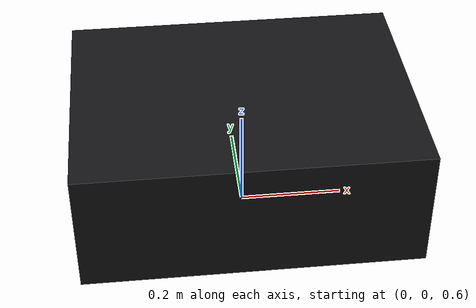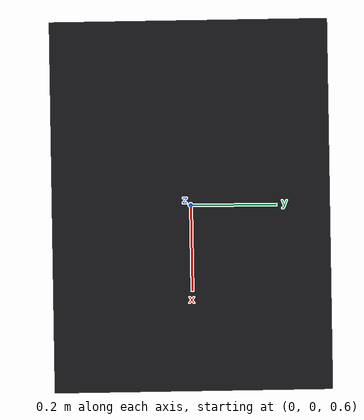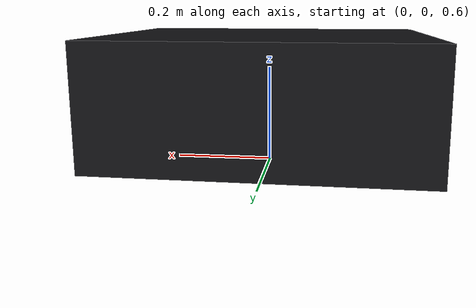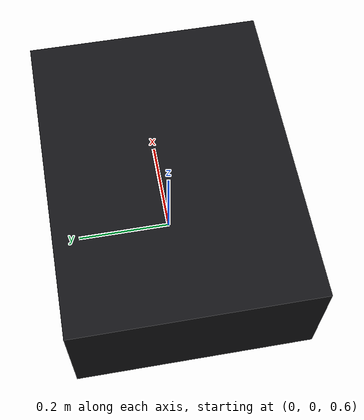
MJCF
<mujoco model="ant">
  <compiler angle="degree" coordinate="local" inertiafromgeom="true" meshdir="assets"/>
  <option integrator="RK4" timestep="0.01"/>
  <custom>
    <numeric data="0.0 0.0 0.55 1.0 0.0 0.0 0.0 0.0 1.0 0.0 -1.0 0.0 -1.0 0.0 1.0" name="init_qpos"/>
  </custom>
  <default>
    <joint armature="1" damping="1" limited="true"/>
    <geom conaffinity="0" condim="3" density="5.0" friction="1 0.5 0.5" margin="0.01" rgba="0.8 0.6 0.4 1"/>
    <!-- Phase 3: split what the physics uses from what the camera sees. -->
    <default class="collision">
      <geom group="3"/> <!-- the real primitives (sphere/capsules); toggle group 3 in the viewer -->
    </default>
    <default class="visual">
      <geom type="mesh" group="2" contype="0" conaffinity="0" density="0" rgba="0.07 0.07 0.08 1"/>
    </default>
  </default>
  <asset>
    <texture builtin="flat" height="1278" mark="cross" markrgb="1 1 1" name="texgeom" random="0.01" rgb1="0.8 0.6 0.4" rgb2="0.8 0.6 0.4" type="cube" width="127"/>
    <material name="geom" texture="texgeom" texuniform="true"/>
    <!-- Phase 3 placeholder skin (generated by scripts/make_placeholder_mesh.py) -->
    <mesh name="torso_shell" file="torso_shell.stl"/>
  </asset>
  <worldbody>
    <body name="torso" pos="0 0 0.75">
      <camera name="track" mode="trackcom" pos="0 -3 0.3" xyaxes="1 0 0 0 0 1"/>
      <geom class="collision" name="torso_geom" pos="0 0 0" size="0.25" type="sphere"/>
      <geom class="visual" mesh="torso_shell" name="torso_shell_geom" pos="0 0 0"/>
      <joint armature="0" damping="0" limited="false" margin="0.01" name="root" pos="0 0 0" type="free"/>
      <body name="front_left_leg" pos="0 0 0">
        <geom class="collision" fromto="0.0 0.0 0.0 0.2 0.2 0.0" name="aux_1_geom" size="0.08" type="capsule"/>
        <body name="aux_1" pos="0.2 0.2 0">
          <joint axis="0 0 1" name="hip_1" pos="0.0 0.0 0.0" range="-30 30" type="hinge"/>
          <geom class="collision" fromto="0.0 0.0 0.0 0.2 0.2 0.0" name="left_leg_geom" size="0.08" type="capsule"/>
          <body pos="0.2 0.2 0">
            <joint axis="-1 1 0" name="ankle_1" pos="0.0 0.0 0.0" range="30 70" type="hinge"/>
            <geom class="collision" fromto="0.0 0.0 0.0 0.4 0.4 0.0" name="left_ankle_geom" size="0.08" type="capsule"/>
          </body>
        </body>
      </body>
      <body name="front_right_leg" pos="0 0 0">
        <geom class="collision" fromto="0.0 0.0 0.0 -0.2 0.2 0.0" name="aux_2_geom" size="0.08" type="capsule"/>
        <body name="aux_2" pos="-0.2 0.2 0">
          <joint axis="0 0 1" name="hip_2" pos="0.0 0.0 0.0" range="-30 30" type="hinge"/>
          <geom class="collision" fromto="0.0 0.0 0.0 -0.2 0.2 0.0" name="right_leg_geom" size="0.08" type="capsule"/>
          <body pos="-0.2 0.2 0">
            <joint axis="1 1 0" name="ankle_2" pos="0.0 0.0 0.0" range="-70 -30" type="hinge"/>
            <geom class="collision" fromto="0.0 0.0 0.0 -0.4 0.4 0.0" name="right_ankle_geom" size="0.08" type="capsule"/>
          </body>
        </body>
      </body>
      <body name="back_leg" pos="0 0 0">
        <geom class="collision" fromto="0.0 0.0 0.0 -0.2 -0.2 0.0" name="aux_3_geom" size="0.08" type="capsule"/>
        <body name="aux_3" pos="-0.2 -0.2 0">
          <joint axis="0 0 1" name="hip_3" pos="0.0 0.0 0.0" range="-30 30" type="hinge"/>
          <geom class="collision" fromto="0.0 0.0 0.0 -0.2 -0.2 0.0" name="back_leg_geom" size="0.08" type="capsule"/>
          <body pos="-0.2 -0.2 0">
            <joint axis="-1 1 0" name="ankle_3" pos="0.0 0.0 0.0" range="-70 -30" type="hinge"/>
            <geom class="collision" fromto="0.0 0.0 0.0 -0.4 -0.4 0.0" name="third_ankle_geom" size="0.08" type="capsule"/>
          </body>
        </body>
      </body>
      <body name="right_back_leg" pos="0 0 0">
        <geom class="collision" fromto="0.0 0.0 0.0 0.2 -0.2 0.0" name="aux_4_geom" size="0.08" type="capsule"/>
        <body name="aux_4" pos="0.2 -0.2 0">
          <joint axis="0 0 1" name="hip_4" pos="0.0 0.0 0.0" range="-30 30" type="hinge"/>
          <geom class="collision" fromto="0.0 0.0 0.0 0.2 -0.2 0.0" name="rightback_leg_geom" size="0.08" type="capsule"/>
          <body pos="0.2 -0.2 0">
            <joint axis="1 1 0" name="ankle_4" pos="0.0 0.0 0.0" range="30 70" type="hinge"/>
            <geom class="collision" fromto="0.0 0.0 0.0 0.4 -0.4 0.0" name="fourth_ankle_geom" size="0.08" type="capsule"/>
          </body>
        </body>
      </body>
    </body>
  </worldbody>
  <actuator>
    <motor ctrllimited="true" ctrlrange="-1.0 1.0" joint="hip_4" gear="150"/>
    <motor ctrllimited="true" ctrlrange="-1.0 1.0" joint="ankle_4" gear="150"/>
    <motor ctrllimited="true" ctrlrange="-1.0 1.0" joint="hip_1" gear="150"/>
    <motor ctrllimited="true" ctrlrange="-1.0 1.0" joint="ankle_1" gear="150"/>
    <motor ctrllimited="true" ctrlrange="-1.0 1.0" joint="hip_2" gear="150"/>
    <motor ctrllimited="true" ctrlrange="-1.0 1.0" joint="ankle_2" gear="150"/>
    <motor ctrllimited="true" ctrlrange="-1.0 1.0" joint="hip_3" gear="150"/>
    <motor ctrllimited="true" ctrlrange="-1.0 1.0" joint="ankle_3" gear="150"/>
  </actuator>
</mujoco>
